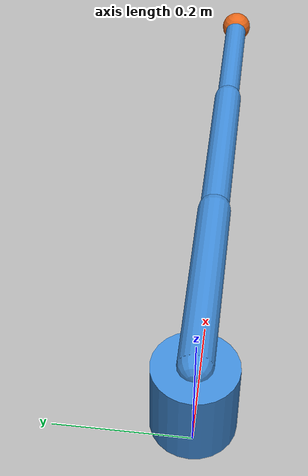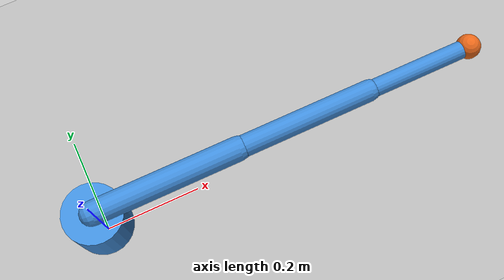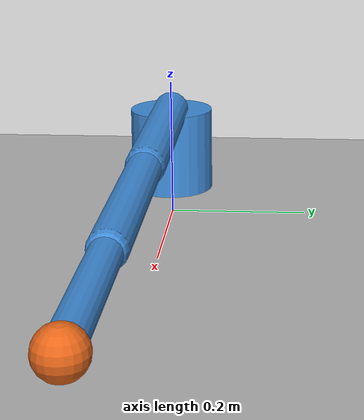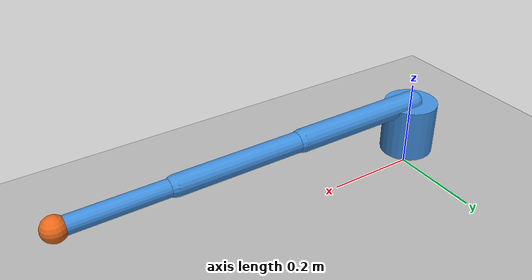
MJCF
<mujoco model="planar_arm">
  <option gravity="0 0 -9.81" timestep="0.002" integrator="RK4"/>

  <asset>
    <material name="link_mat" rgba="0.25 0.55 0.85 1"/>
    <material name="ee_mat"   rgba="0.9  0.4  0.1  1"/>
  </asset>

  <worldbody>
    <geom name="floor" type="plane" size="2 2 0.1" rgba="0.7 0.7 0.7 1"/>

    <body name="base" pos="0 0 0.1">
      <geom name="base" type="cylinder" size="0.06 0.06" material="link_mat" mass="3"/>

      <body name="link1" pos="0 0 0.06">
        <joint name="j1" type="hinge" axis="0 1 0"
               range="-1.57 1.57" damping="3.0" armature="0.05"/>
        <geom type="capsule" fromto="0 0 0  0.3 0 0"
              size="0.025" material="link_mat" mass="1.2"/>

        <body name="link2" pos="0.3 0 0">
          <joint name="j2" type="hinge" axis="0 1 0"
                 range="-2.5 0.5" damping="2.0" armature="0.04"/>
          <geom type="capsule" fromto="0 0 0  0.28 0 0"
                size="0.022" material="link_mat" mass="0.9"/>

          <body name="link3" pos="0.28 0 0">
            <joint name="j3" type="hinge" axis="0 1 0"
                   range="-2.0 2.0" damping="1.5" armature="0.03"/>
            <geom type="capsule" fromto="0 0 0  0.22 0 0"
                  size="0.018" material="link_mat" mass="0.6"/>

            <body name="end_effector" pos="0.22 0 0">
              <geom name="ee_geom" type="sphere" size="0.025" material="ee_mat" mass="0.15"
                    solimp="0.99 0.999 0.001" solref="0.02 1"/>
              <site name="ee_site" size="0.01" rgba="1 0 0 1"/>
            </body>
          </body>
        </body>
      </body>
    </body>
  </worldbody>

  <actuator>
    <!-- Torque-controlled joints (no internal gearing model) -->
    <motor name="act_j1" joint="j1" gear="1" ctrllimited="true" ctrlrange="-50 50"/>
    <motor name="act_j2" joint="j2" gear="1" ctrllimited="true" ctrlrange="-40 40"/>
    <motor name="act_j3" joint="j3" gear="1" ctrllimited="true" ctrlrange="-25 25"/>
  </actuator>
</mujoco>
